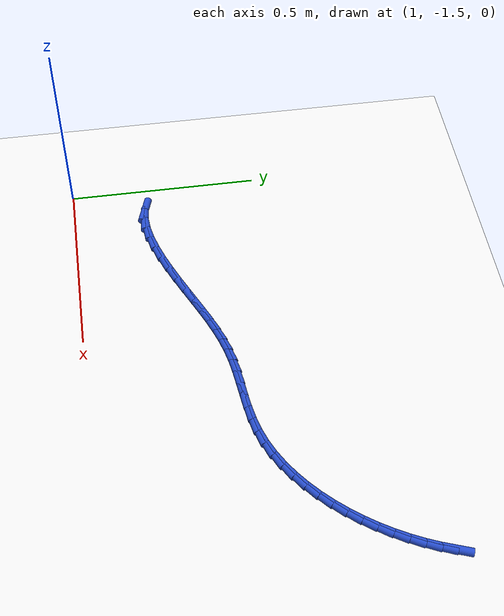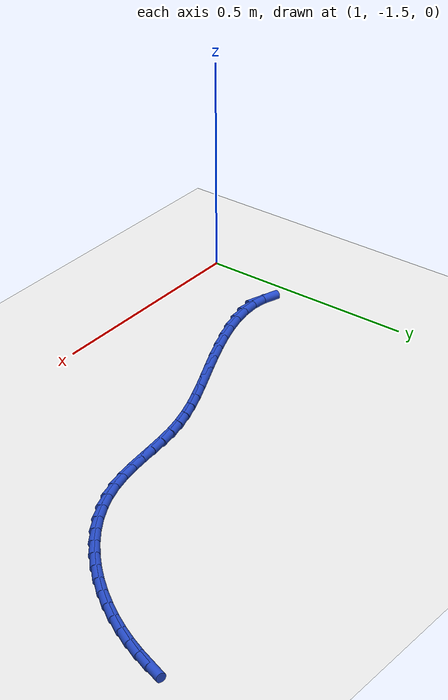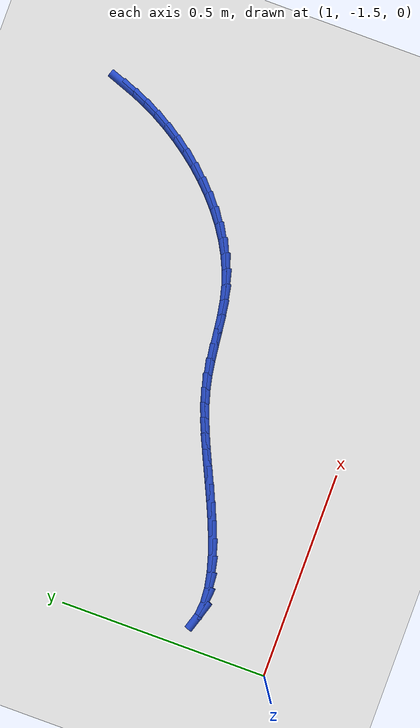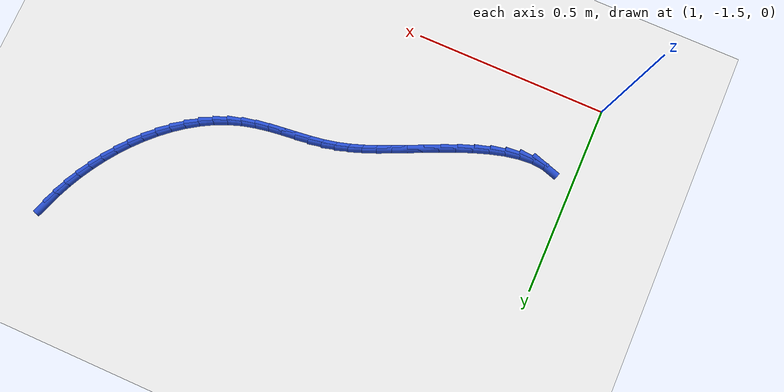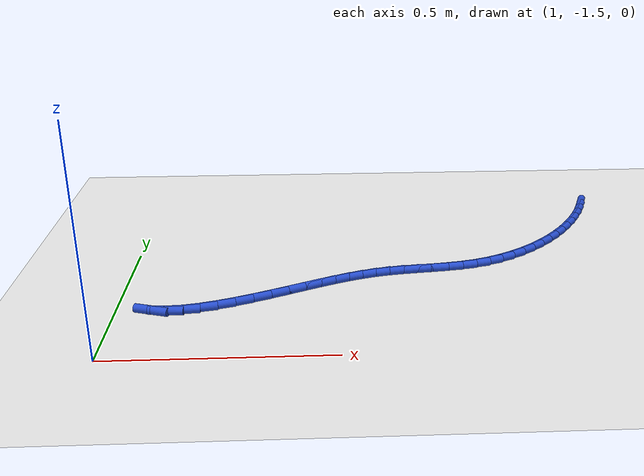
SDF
<sdf version="1.6">
 <world name="default">
  <model name="ground_plane">
   <static>1</static>
   <link name="link">
    <collision name="collision">
     <geometry><plane><normal>0 0 1</normal><size>100 100</size></plane></geometry>
     <surface><friction><ode><mu>100</mu><mu2>50</mu2></ode></friction></surface>
    </collision>
    <visual name="visual">
     <cast_shadows>0</cast_shadows>
     <geometry><plane><normal>0 0 1</normal><size>100 100</size></plane></geometry>
     <material>
      <script><uri>file://media/materials/scripts/gazebo.material</uri><name>Gazebo/WhiteGlow</name></script>
     </material>
    </visual>
   </link>
  </model>
  <model name="line">
   <link name="link_127">
    <pose>2.1878253945526898 -0.7194587558522998 0.01 0 1.57 1.2204295730071806</pose>
    <collision name="collision">
     <geometry><cylinder><radius>0.01</radius><length>0.08</length></cylinder></geometry>
    </collision>
    <visual name="visual">
     <material>
      <script><name>Gazebo/Blue</name><uri>file://media/materials/scripts/gazebo.material</uri></script>
     </material>
     <geometry><cylinder><radius>0.01</radius><length>0.08</length></cylinder></geometry>
    </visual>
   </link>
   <link name="link_128">
    <pose>2.176178748262596 -0.7513285930545516 0.01 0 1.57 1.1682011608259835</pose>
    <collision name="collision">
     <geometry><cylinder><radius>0.01</radius><length>0.08</length></cylinder></geometry>
    </collision>
    <visual name="visual">
     <material>
      <script><name>Gazebo/Blue</name><uri>file://media/materials/scripts/gazebo.material</uri></script>
     </material>
     <geometry><cylinder><radius>0.01</radius><length>0.08</length></cylinder></geometry>
    </visual>
   </link>
   <link name="link_129">
    <pose>2.1626067831152835 -0.7831984653955828 0.01 0 1.57 1.1136335774249329</pose>
    <collision name="collision">
     <geometry><cylinder><radius>0.01</radius><length>0.08</length></cylinder></geometry>
    </collision>
    <visual name="visual">
     <material>
      <script><name>Gazebo/Blue</name><uri>file://media/materials/scripts/gazebo.material</uri></script>
     </material>
     <geometry><cylinder><radius>0.01</radius><length>0.08</length></cylinder></geometry>
    </visual>
   </link>
   <link name="link_130">
    <pose>2.14693841450126 -0.8150499214531249 0.01 0 1.57 1.0603514383932284</pose>
    <collision name="collision">
     <geometry><cylinder><radius>0.01</radius><length>0.08</length></cylinder></geometry>
    </collision>
    <visual name="visual">
     <material>
      <script><name>Gazebo/Blue</name><uri>file://media/materials/scripts/gazebo.material</uri></script>
     </material>
     <geometry><cylinder><radius>0.01</radius><length>0.08</length></cylinder></geometry>
    </visual>
   </link>
   <link name="link_131">
    <pose>2.129249508974059 -0.846640471201295 0.01 0 1.57 1.0076357517766</pose>
    <collision name="collision">
     <geometry><cylinder><radius>0.01</radius><length>0.08</length></cylinder></geometry>
    </collision>
    <visual name="visual">
     <material>
      <script><name>Gazebo/Blue</name><uri>file://media/materials/scripts/gazebo.material</uri></script>
     </material>
     <geometry><cylinder><radius>0.01</radius><length>0.08</length></cylinder></geometry>
    </visual>
   </link>
   <link name="link_132">
    <pose>2.1096308061124924 -0.8777141315341473 0.01 0 1.57 0.9546158160361309</pose>
    <collision name="collision">
     <geometry><cylinder><radius>0.01</radius><length>0.08</length></cylinder></geometry>
    </collision>
    <visual name="visual">
     <material>
      <script><name>Gazebo/Blue</name><uri>file://media/materials/scripts/gazebo.material</uri></script>
     </material>
     <geometry><cylinder><radius>0.01</radius><length>0.08</length></cylinder></geometry>
    </visual>
   </link>
   <link name="link_133">
    <pose>2.088173045495368 -0.9080149193457389 0.01 0 1.57 0.9004759477636218</pose>
    <collision name="collision">
     <geometry><cylinder><radius>0.01</radius><length>0.08</length></cylinder></geometry>
    </collision>
    <visual name="visual">
     <material>
      <script><name>Gazebo/Blue</name><uri>file://media/materials/scripts/gazebo.material</uri></script>
     </material>
     <geometry><cylinder><radius>0.01</radius><length>0.08</length></cylinder></geometry>
    </visual>
   </link>
   <link name="link_134">
    <pose>2.0649669667014963 -0.9372868515301257 0.01 0 1.57 0.8444286821554416</pose>
    <collision name="collision">
     <geometry><cylinder><radius>0.01</radius><length>0.08</length></cylinder></geometry>
    </collision>
    <visual name="visual">
     <material>
      <script><name>Gazebo/Blue</name><uri>file://media/materials/scripts/gazebo.material</uri></script>
     </material>
     <geometry><cylinder><radius>0.01</radius><length>0.08</length></cylinder></geometry>
    </visual>
   </link>
   <link name="link_135">
    <pose>2.0401033093096865 -0.9652739449813643 0.01 0 1.57 0.7856965023718111</pose>
    <collision name="collision">
     <geometry><cylinder><radius>0.01</radius><length>0.08</length></cylinder></geometry>
    </collision>
    <visual name="visual">
     <material>
      <script><name>Gazebo/Blue</name><uri>file://media/materials/scripts/gazebo.material</uri></script>
     </material>
     <geometry><cylinder><radius>0.01</radius><length>0.08</length></cylinder></geometry>
    </visual>
   </link>
   <link name="link_136">
    <pose>2.013672812898749 -0.9917202165935096 0.01 0 1.57 0.7235029491717072</pose>
    <collision name="collision">
     <geometry><cylinder><radius>0.01</radius><length>0.08</length></cylinder></geometry>
    </collision>
    <visual name="visual">
     <material>
      <script><name>Gazebo/Blue</name><uri>file://media/materials/scripts/gazebo.material</uri></script>
     </material>
     <geometry><cylinder><radius>0.01</radius><length>0.08</length></cylinder></geometry>
    </visual>
   </link>
   <link name="link_137">
    <pose>1.9857662170474926 -1.016369683260618 0.01 0 1.57 0.6570755149956718</pose>
    <collision name="collision">
     <geometry><cylinder><radius>0.01</radius><length>0.08</length></cylinder></geometry>
    </collision>
    <visual name="visual">
     <material>
      <script><name>Gazebo/Blue</name><uri>file://media/materials/scripts/gazebo.material</uri></script>
     </material>
     <geometry><cylinder><radius>0.01</radius><length>0.08</length></cylinder></geometry>
    </visual>
   </link>
   <link name="link_138">
    <pose>1.9564742613347275 -1.038966361876746 0.01 0 1.57 0.585664387807369</pose>
    <collision name="collision">
     <geometry><cylinder><radius>0.01</radius><length>0.08</length></cylinder></geometry>
    </collision>
    <visual name="visual">
     <material>
      <script><name>Gazebo/Blue</name><uri>file://media/materials/scripts/gazebo.material</uri></script>
     </material>
     <geometry><cylinder><radius>0.01</radius><length>0.08</length></cylinder></geometry>
    </visual>
   </link>
   <link name="link_139">
    <pose>1.9258876853392626 -1.05925426933595 0.01 0 1.57 0.5085824929858054</pose>
    <collision name="collision">
     <geometry><cylinder><radius>0.01</radius><length>0.08</length></cylinder></geometry>
    </collision>
    <visual name="visual">
     <material>
      <script><name>Gazebo/Blue</name><uri>file://media/materials/scripts/gazebo.material</uri></script>
     </material>
     <geometry><cylinder><radius>0.01</radius><length>0.08</length></cylinder></geometry>
    </visual>
   </link>
   <link name="link_140">
    <pose>1.8940972286399083 -1.0769774225322846 0.01 0 1.57 0.4252724411975438</pose>
    <collision name="collision">
     <geometry><cylinder><radius>0.01</radius><length>0.08</length></cylinder></geometry>
    </collision>
    <visual name="visual">
     <material>
      <script><name>Gazebo/Blue</name><uri>file://media/materials/scripts/gazebo.material</uri></script>
     </material>
     <geometry><cylinder><radius>0.01</radius><length>0.08</length></cylinder></geometry>
    </visual>
   </link>
   <link name="link_141">
    <pose>1.8611936308154737 -1.091879838359807 0.01 0 1.57 0.33540319426871534</pose>
    <collision name="collision">
     <geometry><cylinder><radius>0.01</radius><length>0.08</length></cylinder></geometry>
    </collision>
    <visual name="visual">
     <material>
      <script><name>Gazebo/Blue</name><uri>file://media/materials/scripts/gazebo.material</uri></script>
     </material>
     <geometry><cylinder><radius>0.01</radius><length>0.08</length></cylinder></geometry>
    </visual>
   </link>
   <link name="link_142">
    <pose>1.827267631444769 -1.1037055337125727 0.01 0 1.57 0.24417638486544588</pose>
    <collision name="collision">
     <geometry><cylinder><radius>0.01</radius><length>0.08</length></cylinder></geometry>
    </collision>
    <visual name="visual">
     <material>
      <script><name>Gazebo/Blue</name><uri>file://media/materials/scripts/gazebo.material</uri></script>
     </material>
     <geometry><cylinder><radius>0.01</radius><length>0.08</length></cylinder></geometry>
    </visual>
   </link>
   <link name="link_143">
    <pose>1.7924486309271355 -1.1123806093522643 0.01 0 1.57 0.17372305370022015</pose>
    <collision name="collision">
     <geometry><cylinder><radius>0.01</radius><length>0.08</length></cylinder></geometry>
    </collision>
    <visual name="visual">
     <material>
      <script><name>Gazebo/Blue</name><uri>file://media/materials/scripts/gazebo.material</uri></script>
     </material>
     <geometry><cylinder><radius>0.01</radius><length>0.08</length></cylinder></geometry>
    </visual>
   </link>
   <link name="link_144">
    <pose>1.7570285400138328 -1.1185965536603317 0.01 0 1.57 0.12955393504222096</pose>
    <collision name="collision">
     <geometry><cylinder><radius>0.01</radius><length>0.08</length></cylinder></geometry>
    </collision>
    <visual name="visual">
     <material>
      <script><name>Gazebo/Blue</name><uri>file://media/materials/scripts/gazebo.material</uri></script>
     </material>
     <geometry><cylinder><radius>0.01</radius><length>0.08</length></cylinder></geometry>
    </visual>
   </link>
   <link name="link_145">
    <pose>1.721341962842969 -1.1232459313764733 0.01 0 1.57 0.11115001313928073</pose>
    <collision name="collision">
     <geometry><cylinder><radius>0.01</radius><length>0.08</length></cylinder></geometry>
    </collision>
    <visual name="visual">
     <material>
      <script><name>Gazebo/Blue</name><uri>file://media/materials/scripts/gazebo.material</uri></script>
     </material>
     <geometry><cylinder><radius>0.01</radius><length>0.08</length></cylinder></geometry>
    </visual>
   </link>
   <link name="link_146">
    <pose>1.685723503736481 -1.1272213081061788 0.01 0 1.57 0.11853452694549275</pose>
    <collision name="collision">
     <geometry><cylinder><radius>0.01</radius><length>0.08</length></cylinder></geometry>
    </collision>
    <visual name="visual">
     <material>
      <script><name>Gazebo/Blue</name><uri>file://media/materials/scripts/gazebo.material</uri></script>
     </material>
     <geometry><cylinder><radius>0.01</radius><length>0.08</length></cylinder></geometry>
    </visual>
   </link>
   <link name="link_147">
    <pose>1.6505077670163044 -1.1314152494549388 0.01 0 1.57 0.15266918420149728</pose>
    <collision name="collision">
     <geometry><cylinder><radius>0.01</radius><length>0.08</length></cylinder></geometry>
    </collision>
    <visual name="visual">
     <material>
      <script><name>Gazebo/Blue</name><uri>file://media/materials/scripts/gazebo.material</uri></script>
     </material>
     <geometry><cylinder><radius>0.01</radius><length>0.08</length></cylinder></geometry>
    </visual>
   </link>
   <link name="link_148">
    <pose>1.6160293570043762 -1.1367203210282444 0.01 0 1.57 0.21345716392095337</pose>
    <collision name="collision">
     <geometry><cylinder><radius>0.01</radius><length>0.08</length></cylinder></geometry>
    </collision>
    <visual name="visual">
     <material>
      <script><name>Gazebo/Blue</name><uri>file://media/materials/scripts/gazebo.material</uri></script>
     </material>
     <geometry><cylinder><radius>0.01</radius><length>0.08</length></cylinder></geometry>
    </visual>
   </link>
   <link name="link_149">
    <pose>1.5825774744790395 -1.1439713292008467 0.01 0 1.57 0.2802091784468844</pose>
    <collision name="collision">
     <geometry><cylinder><radius>0.01</radius><length>0.08</length></cylinder></geometry>
    </collision>
    <visual name="visual">
     <material>
      <script><name>Gazebo/Blue</name><uri>file://media/materials/scripts/gazebo.material</uri></script>
     </material>
     <geometry><cylinder><radius>0.01</radius><length>0.08</length></cylinder></geometry>
    </visual>
   </link>
   <link name="link_150">
    <pose>1.5499389951696876 -1.1533640573525785 0.01 0 1.57 0.33695433507842343</pose>
    <collision name="collision">
     <geometry><cylinder><radius>0.01</radius><length>0.08</length></cylinder></geometry>
    </collision>
    <visual name="visual">
     <material>
      <script><name>Gazebo/Blue</name><uri>file://media/materials/scripts/gazebo.material</uri></script>
     </material>
     <geometry><cylinder><radius>0.01</radius><length>0.08</length></cylinder></geometry>
    </visual>
   </link>
   <link name="link_151">
    <pose>1.517588421538275 -1.164696909315287 0.01 0 1.57 0.381253266739392</pose>
    <collision name="collision">
     <geometry><cylinder><radius>0.01</radius><length>0.08</length></cylinder></geometry>
    </collision>
    <visual name="visual">
     <material>
      <script><name>Gazebo/Blue</name><uri>file://media/materials/scripts/gazebo.material</uri></script>
     </material>
     <geometry><cylinder><radius>0.01</radius><length>0.08</length></cylinder></geometry>
    </visual>
   </link>
   <link name="link_152">
    <pose>1.4849955514114723 -1.1777623040109817 0.01 0 1.57 0.412234523740299</pose>
    <collision name="collision">
     <geometry><cylinder><radius>0.01</radius><length>0.08</length></cylinder></geometry>
    </collision>
    <visual name="visual">
     <material>
      <script><name>Gazebo/Blue</name><uri>file://media/materials/scripts/gazebo.material</uri></script>
     </material>
     <geometry><cylinder><radius>0.01</radius><length>0.08</length></cylinder></geometry>
    </visual>
   </link>
   <link name="link_153">
    <pose>1.451630182615955 -1.1923526603616712 0.01 0 1.57 0.4301961540490088</pose>
    <collision name="collision">
     <geometry><cylinder><radius>0.01</radius><length>0.08</length></cylinder></geometry>
    </collision>
    <visual name="visual">
     <material>
      <script><name>Gazebo/Blue</name><uri>file://media/materials/scripts/gazebo.material</uri></script>
     </material>
     <geometry><cylinder><radius>0.01</radius><length>0.08</length></cylinder></geometry>
    </visual>
   </link>
   <link name="link_154">
    <pose>1.4169621129783945 -1.2082603972893653 0.01 0 1.57 0.43615787634617176</pose>
    <collision name="collision">
     <geometry><cylinder><radius>0.01</radius><length>0.08</length></cylinder></geometry>
    </collision>
    <visual name="visual">
     <material>
      <script><name>Gazebo/Blue</name><uri>file://media/materials/scripts/gazebo.material</uri></script>
     </material>
     <geometry><cylinder><radius>0.01</radius><length>0.08</length></cylinder></geometry>
    </visual>
   </link>
   <link name="link_155">
    <pose>1.3805102278422137 -1.2252504499472883 0.01 0 1.57 0.4303496102932668</pose>
    <collision name="collision">
     <geometry><cylinder><radius>0.01</radius><length>0.08</length></cylinder></geometry>
    </collision>
    <visual name="visual">
     <material>
      <script><name>Gazebo/Blue</name><uri>file://media/materials/scripts/gazebo.material</uri></script>
     </material>
     <geometry><cylinder><radius>0.01</radius><length>0.08</length></cylinder></geometry>
    </visual>
   </link>
   <link name="link_156">
    <pose>1.3424337027964257 -1.2427292593086614 0.01 0 1.57 0.4128282015311525</pose>
    <collision name="collision">
     <geometry><cylinder><radius>0.01</radius><length>0.08</length></cylinder></geometry>
    </collision>
    <visual name="visual">
     <material>
      <script><name>Gazebo/Blue</name><uri>file://media/materials/scripts/gazebo.material</uri></script>
     </material>
     <geometry><cylinder><radius>0.01</radius><length>0.08</length></cylinder></geometry>
    </visual>
   </link>
   <link name="link_157">
    <pose>1.3033404766262182 -1.25985200686691 0.01 0 1.57 0.3831141557260624</pose>
    <collision name="collision">
     <geometry><cylinder><radius>0.01</radius><length>0.08</length></cylinder></geometry>
    </collision>
    <visual name="visual">
     <material>
      <script><name>Gazebo/Blue</name><uri>file://media/materials/scripts/gazebo.material</uri></script>
     </material>
     <geometry><cylinder><radius>0.01</radius><length>0.08</length></cylinder></geometry>
    </visual>
   </link>
   <link name="link_158">
    <pose>1.2638477468126554 -1.2757686902342282 0.01 0 1.57 0.33926633659548666</pose>
    <collision name="collision">
     <geometry><cylinder><radius>0.01</radius><length>0.08</length></cylinder></geometry>
    </collision>
    <visual name="visual">
     <material>
      <script><name>Gazebo/Blue</name><uri>file://media/materials/scripts/gazebo.material</uri></script>
     </material>
     <geometry><cylinder><radius>0.01</radius><length>0.08</length></cylinder></geometry>
    </visual>
   </link>
   <link name="link_159">
    <pose>1.2245727108368007 -1.289629307022809 0.01 0 1.57 0.2776176614955468</pose>
    <collision name="collision">
     <geometry><cylinder><radius>0.01</radius><length>0.08</length></cylinder></geometry>
    </collision>
    <visual name="visual">
     <material>
      <script><name>Gazebo/Blue</name><uri>file://media/materials/scripts/gazebo.material</uri></script>
     </material>
     <geometry><cylinder><radius>0.01</radius><length>0.08</length></cylinder></geometry>
    </visual>
   </link>
   <link name="link_160">
    <pose>1.1861325661797182 -1.3005838548448472 0.01 0 1.57 0.19221355165721143</pose>
    <collision name="collision">
     <geometry><cylinder><radius>0.01</radius><length>0.08</length></cylinder></geometry>
    </collision>
    <visual name="visual">
     <material>
      <script><name>Gazebo/Blue</name><uri>file://media/materials/scripts/gazebo.material</uri></script>
     </material>
     <geometry><cylinder><radius>0.01</radius><length>0.08</length></cylinder></geometry>
    </visual>
   </link>
   <link name="link_161">
    <pose>1.1491445103224731 -1.3077823313125352 0.01 0 1.57 0.07410500372545055</pose>
    <collision name="collision">
     <geometry><cylinder><radius>0.01</radius><length>0.08</length></cylinder></geometry>
    </collision>
    <visual name="visual">
     <material>
      <script><name>Gazebo/Blue</name><uri>file://media/materials/scripts/gazebo.material</uri></script>
     </material>
     <geometry><cylinder><radius>0.01</radius><length>0.08</length></cylinder></geometry>
    </visual>
   </link>
   <link name="link_162">
    <pose>1.1142257407461296 -1.3103747340380671 0.01 0 1.57 -0.08861221285575609</pose>
    <collision name="collision">
     <geometry><cylinder><radius>0.01</radius><length>0.08</length></cylinder></geometry>
    </collision>
    <visual name="visual">
     <material>
      <script><name>Gazebo/Blue</name><uri>file://media/materials/scripts/gazebo.material</uri></script>
     </material>
     <geometry><cylinder><radius>0.01</radius><length>0.08</length></cylinder></geometry>
    </visual>
   </link>
   <link name="link_163">
    <pose>1.0819934549317518 -1.3075110606336369 0.01 0 1.57 -0.30695990318922534</pose>
    <collision name="collision">
     <geometry><cylinder><radius>0.01</radius><length>0.08</length></cylinder></geometry>
    </collision>
    <visual name="visual">
     <material>
      <script><name>Gazebo/Blue</name><uri>file://media/materials/scripts/gazebo.material</uri></script>
     </material>
     <geometry><cylinder><radius>0.01</radius><length>0.08</length></cylinder></geometry>
    </visual>
   </link>
  </model>
 </world>
</sdf>
